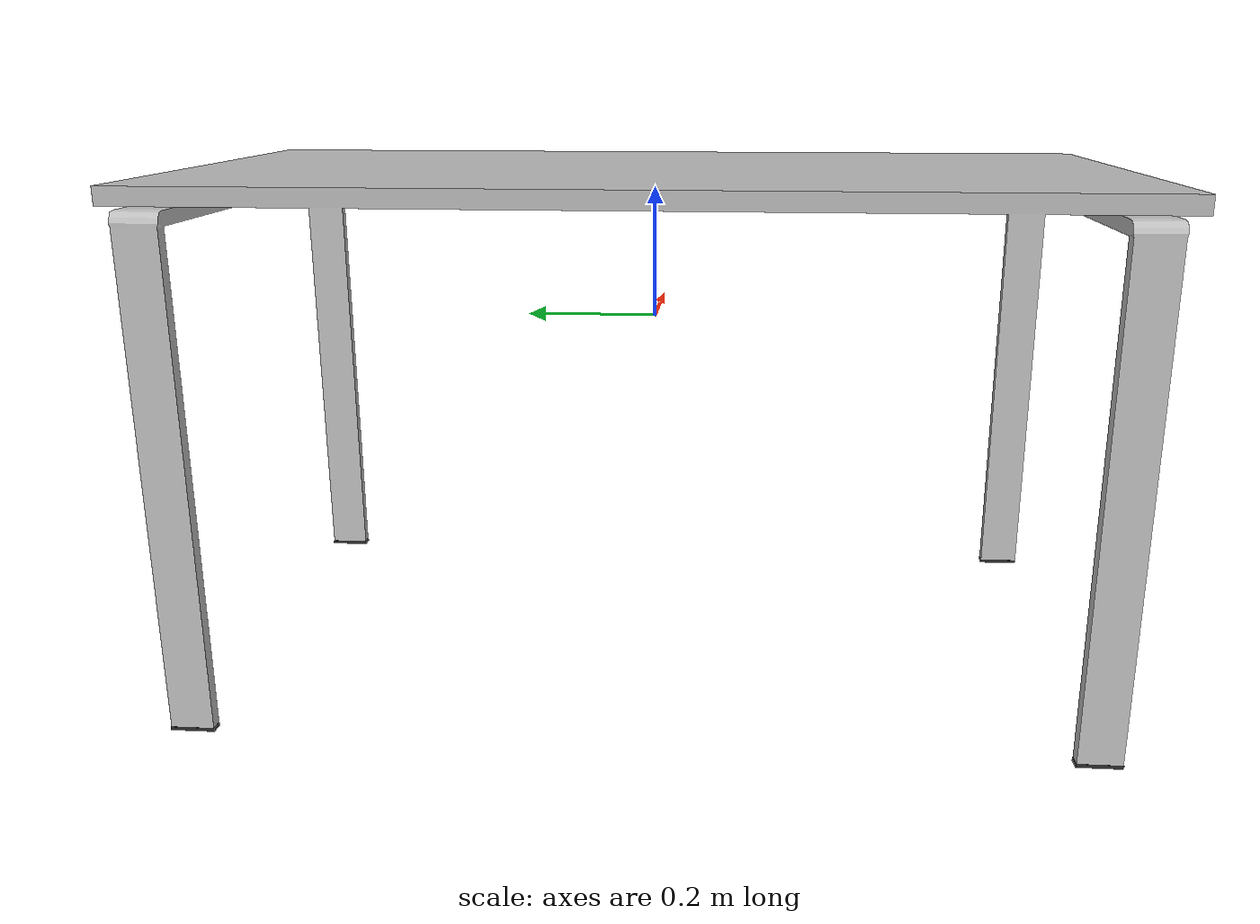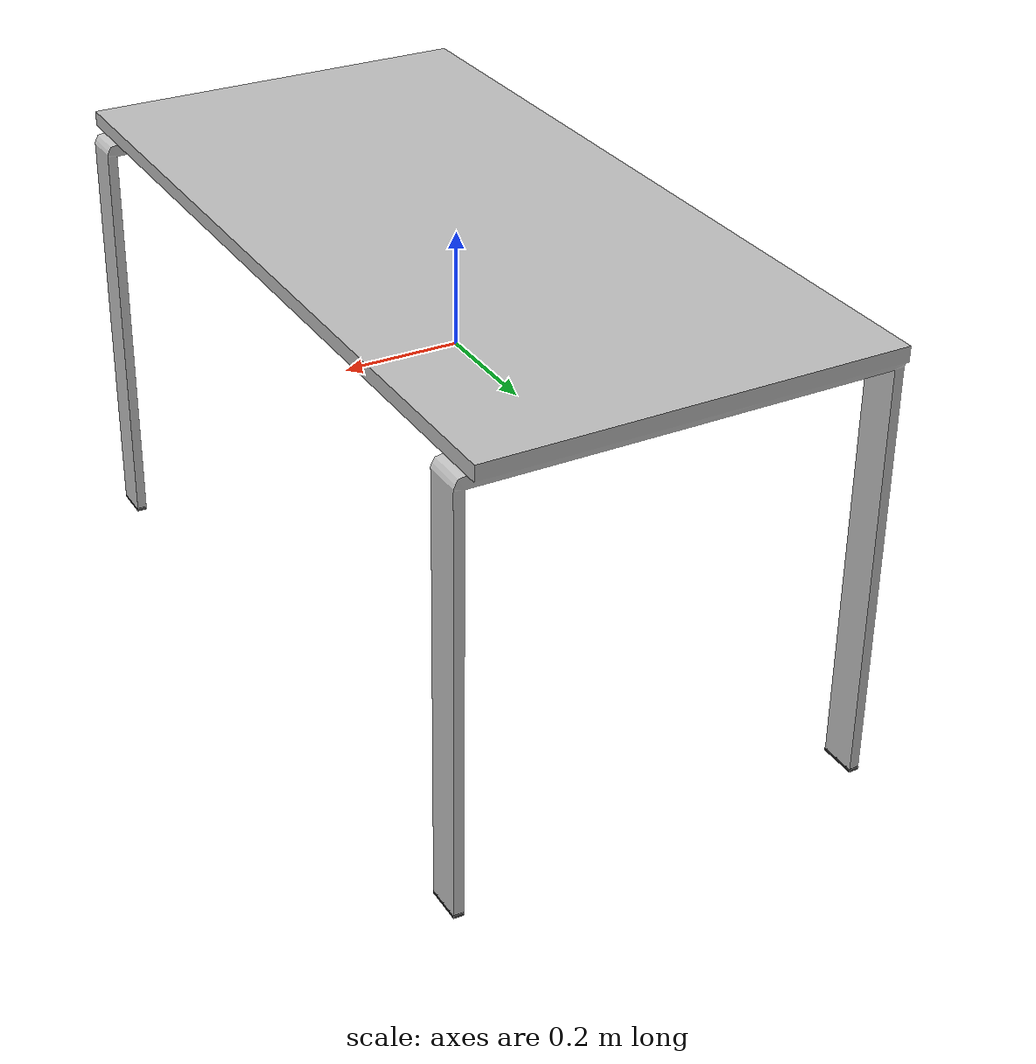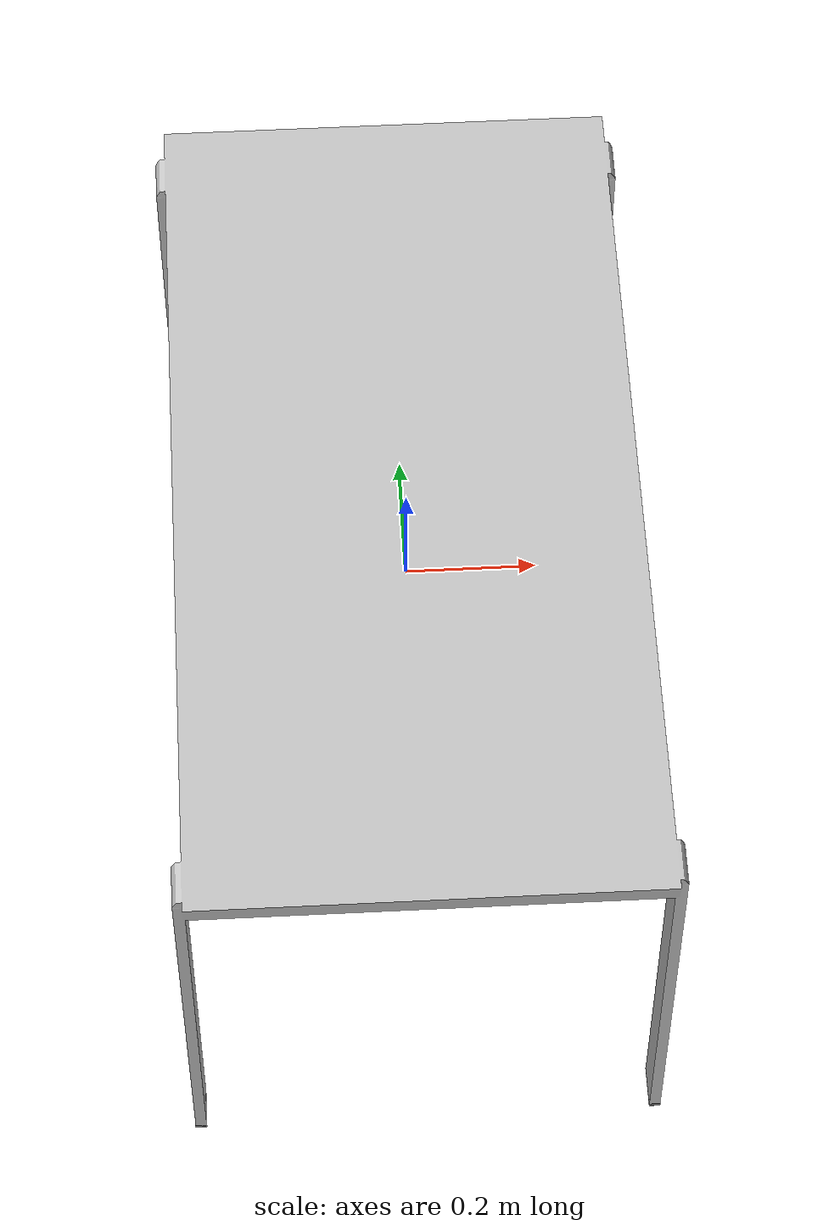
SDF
<?xml version='1.0'?>
<sdf version='1.5'>
  <model name="table_rectangular_high">
    <pose>0 0 0 0 0 0</pose>
    <static>false</static>
    <link name='model_body'>
      <visual name="visual">
        <geometry>
          <mesh>
            <uri>model://robert_gazebo/meshes/table_rectangular_high_visual.dae</uri>
            <scale>1 1 1</scale>
          </mesh>
         </geometry>
      </visual>

      <collision name="collision">
        <geometry>
          <mesh>
            <uri>model://robert_gazebo/meshes/table_rectangular_high_collision.dae</uri>
            <scale>1 1 1</scale>
          </mesh>
        </geometry>
      </collision>

      <inertial>
        <pose> 0 0 0 0 0 0</pose>
        <inertia>
          <ixx>2.42</ixx>
          <ixy>0</ixy>
          <ixz>0</ixz>
          <iyy>0.87</iyy>
          <iyz>0</iyz>
          <izz>2.27</izz>
        </inertia>
        <mass>12.0</mass>
      </inertial>
    </link>
  </model>
</sdf>
